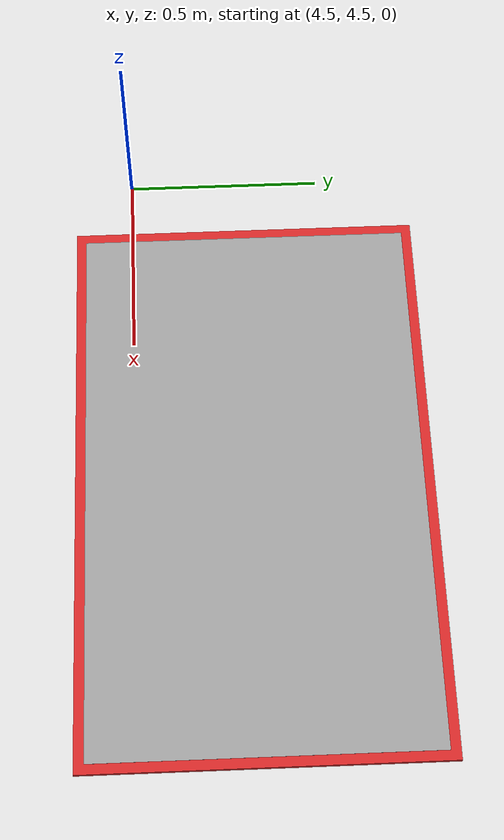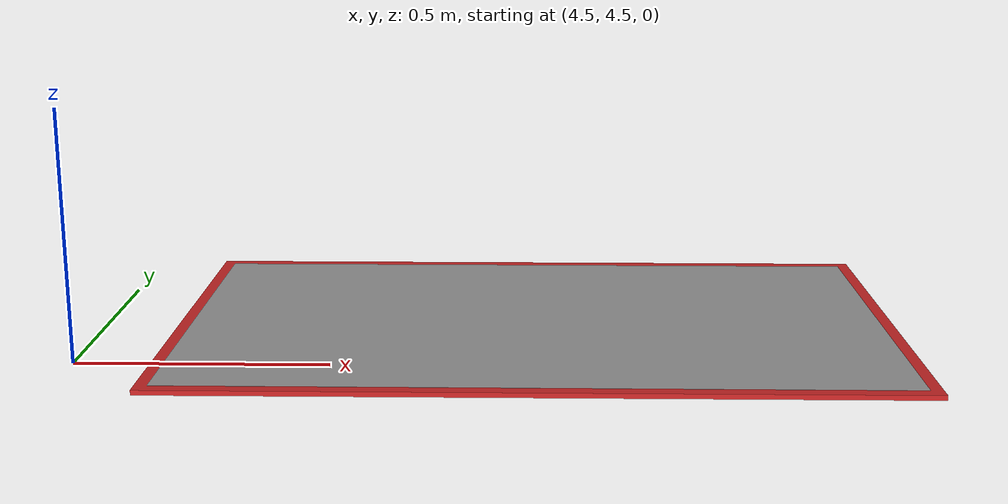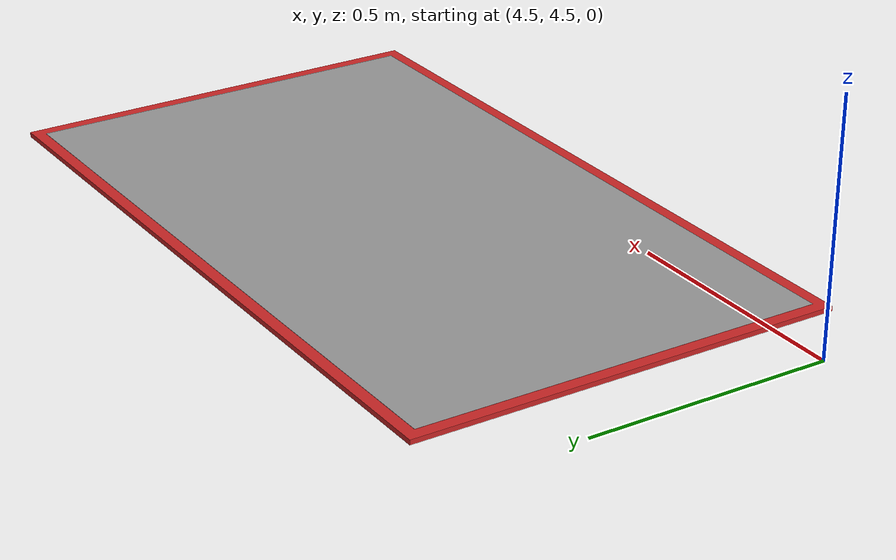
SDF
<?xml version="1.0" ?>
<sdf version="1.5">
  <model name="targetarea">
    <pose>0 0 0 0 0 0</pose>
    <static>false</static>

    <link name="link">
      <gravity>0</gravity>
      <visual name="visual">
        <pose>5.4 4.8 -0.0045 0 0 0</pose>
        <geometry>
          <box>
            <size>1.5 0.9 0.01</size>
          </box>
        </geometry>
        <material>
          <script>
            <uri>file://media/materials/scripts/gazebo.material</uri>
            <name>Gazebo/Red</name>
          </script>
        </material>
      </visual>
    </link>

    <link name="link_inner">
      <gravity>0</gravity>
      <visual name="visual">
        <pose>5.4 4.8 -0.004 0 0 0</pose>
        <geometry>
          <box>
            <size>1.45 0.85 0.01</size>
          </box>
        </geometry>
        <material>
          <script>
            <uri>file://media/materials/scripts/gazebo.material</uri>
            <name>Gazebo/Gray</name>
          </script>
        </material>
      </visual>
    </link>
  </model>
</sdf>
